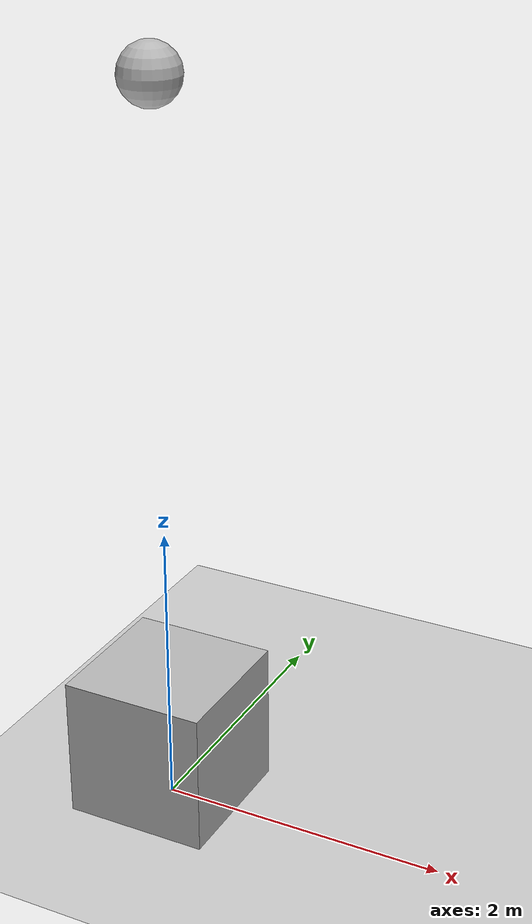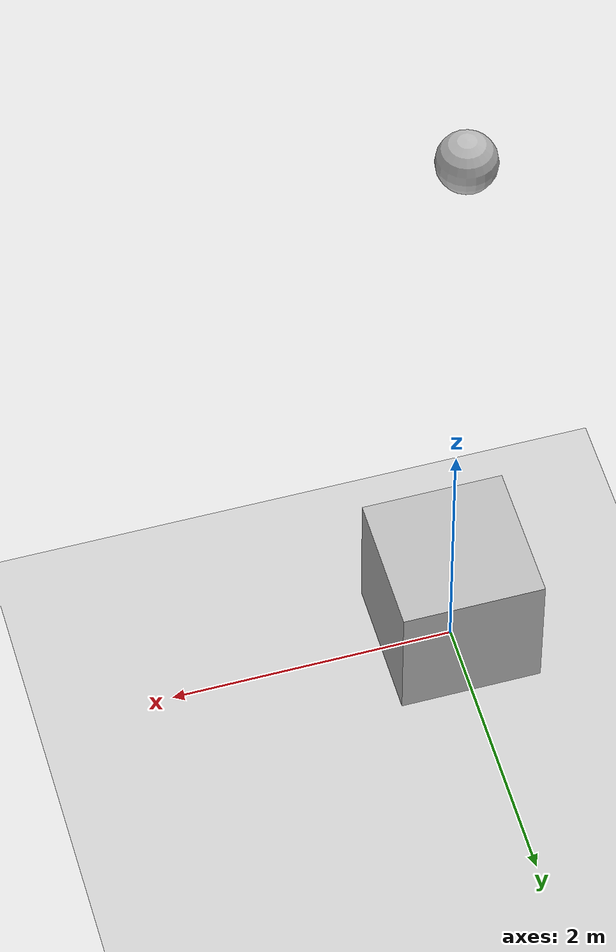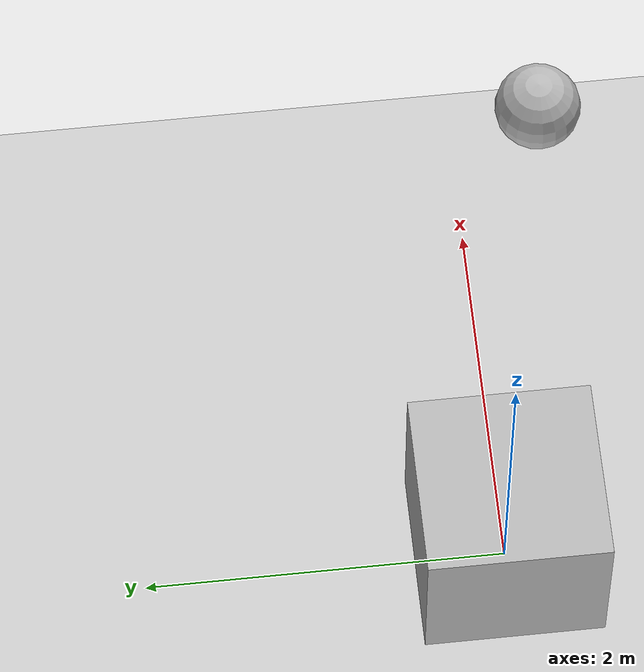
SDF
<?xml version="1.0" ?>
<sdf version="1.7">
  <world name="physics_demo">
    <!-- Include the default ground plane -->
    <include>
      <uri>model://ground_plane</uri>
    </include>

    <!-- Include a simple light source -->
    <include>
      <uri>model://sun</uri>
    </include>

    <!-- Define physics parameters -->
    <physics type="ode">
      <max_step_size>0.001</max_step_size>
      <real_time_factor>1</real_time_factor>
      <real_time_update_rate>1000</real_time_update_rate>
    </physics>

    <!-- Add a static box on the ground -->
    <model name="static_box">
      <static>true</static>
      <link name="link">
        <pose>0 0 0.5 0 0 0</pose>
        <collision name="collision">
          <geometry>
            <box>
              <size>1 1 1</size>
            </box>
          </geometry>
        </collision>
        <visual name="visual">
          <geometry>
            <box>
              <size>1 1 1</size>
            </box>
          </geometry>
        </visual>
      </link>
    </model>

    <!-- Add a dynamic sphere that will fall due to gravity -->
    <model name="falling_sphere">
      <link name="link">
        <pose>0 0 5 0 0 0</pose>
        <inertial>
          <mass>1.0</mass>
          <inertia>
            <ixx>0.1</ixx>
            <ixy>0</ixy>
            <ixz>0</ixz>
            <iyy>0.1</iyy>
            <iyz>0</iyz>
            <izz>0.1</izz>
          </inertia>
        </inertial>
        <collision name="collision">
          <geometry>
            <sphere>
              <radius>0.2</radius>
            </sphere>
          </geometry>
        </collision>
        <visual name="visual">
          <geometry>
            <sphere>
              <radius>0.2</radius>
            </sphere>
          </geometry>
        </visual>
      </link>
    </model>
  </world>
</sdf>
